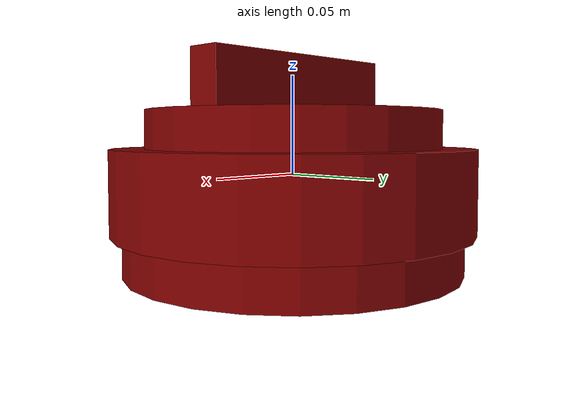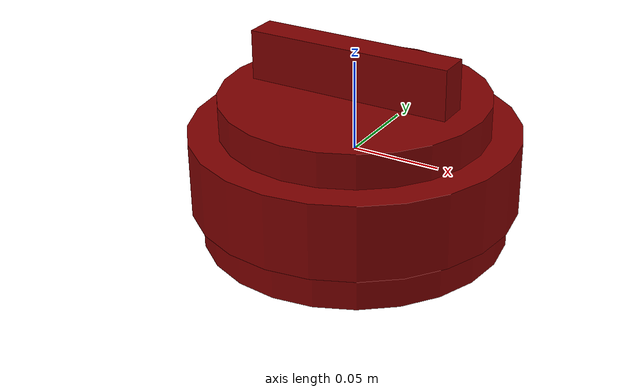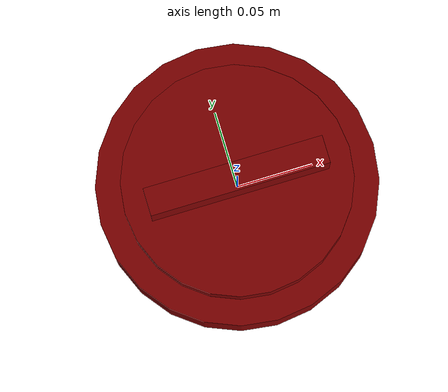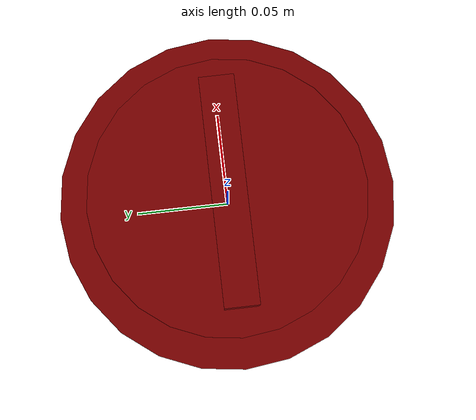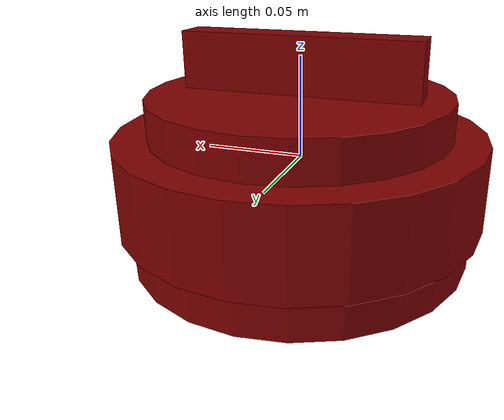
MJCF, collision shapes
<mujoco model="model">
  <option timestep="0.002" gravity="0.0 0.0 -9.81"/>
  <compiler angle="radian"/>
  <asset>
    <texture file="visuals/T_BC001.png" name="lid_material" type="2d"/>
    <material name="lid_material" rgba="1 1 1 1.0" texture="lid_material" shininess="0.18054693937301636" specular="0.3103448502657381"/>
    <mesh file="visuals/lid.obj" name="lid_vis"/>
  </asset>
  <default>
    <default class="visual">
      <geom conaffinity="0" contype="0" group="1" type="mesh"/>
    </default>
    <default class="collision">
      <geom group="0" rgba="0.5 0 0 0.5"/>
    </default>
    <default class="spawn">
      <geom group="0" rgba="1 1 1 0.5" contype="0" conaffinity="0"/>
      <site group="0" rgba="1 1 1 0.5"/>
    </default>
    <default class="region">
      <geom group="1" conaffinity="0" contype="0" rgba="0 1 0 0"/>
    </default>
  </default>
  <worldbody>
    <body>
      <body name="object">
        <geom mesh="lid_vis" type="mesh" solimp="0.998 0.998 0.001" solref="0.001 1" friction="0.95 0.3 0.1" class="visual" material="lid_material"/>
        <geom class="collision" type="cylinder" pos="4.597659175401101e-05 0.00021643481466981224 -0.007568715694813544" size="0.09070291370153427 0.021028811112046242" quat="1.0 0.0 0.0 0.0" density="1000.0"/>
        <geom class="collision" type="cylinder" pos="4.597659175401101e-05 0.00021643481466981224 0.022093504305186445" size="0.07395417243242264 0.010420814156532288" quat="1.0 0.0 0.0 0.0" density="1000.0"/>
        <geom class="collision" type="cylinder" pos="4.597659175401101e-05 0.00021643481466981224 -0.038093504305186445" size="0.08495417243242264 0.010420814156532288" quat="1.0 0.0 0.0 0.0" density="1000.0"/>
        <geom class="collision" type="box" pos="-0.0005472034082459889 -0.0005260051853301878 0.04556836430518643" size="0.058140646666288376 0.008980998769402504 0.014717262238264084" quat="1.0 0.0 0.0 0.0" density="1000.0"/>
        <geom class="region" name="reg_main" density="0" type="box" pos="1.4479999999997273e-05 0.00022032999999999775 0.00578327" size="0.0898895 0.08988499999999999 0.054451"/>
      </body>
    </body>
  </worldbody>
</mujoco>
